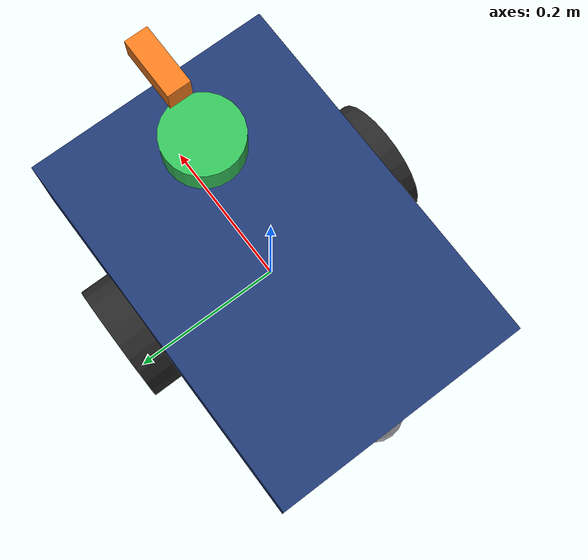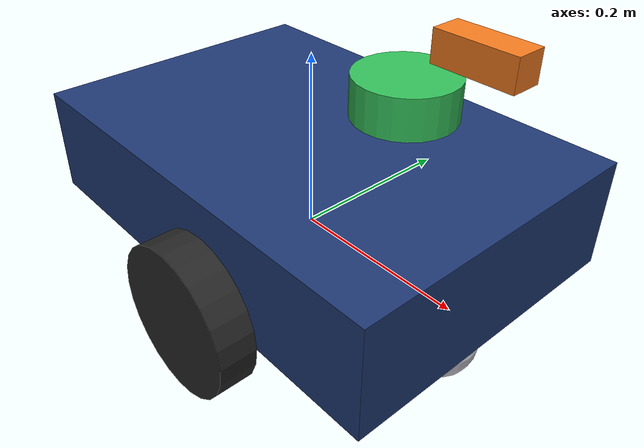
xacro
<?xml version="1.0"?>
<robot name="indoor_patrol_bot" xmlns:xacro="http://www.ros.org/wiki/xacro">
  <xacro:include filename="$(find my_robot_description)/urdf/chassis.xacro"/>
  <xacro:include filename="$(find my_robot_description)/urdf/wheels.xacro"/>
  <xacro:include filename="$(find my_robot_description)/urdf/sensors.xacro"/>
  <xacro:include filename="$(find my_robot_description)/urdf/gazebo.xacro"/>

  <xacro:property name="body_length" value="0.50"/>
  <xacro:property name="body_width" value="0.34"/>
  <xacro:property name="body_height" value="0.12"/>
  <xacro:property name="body_mass" value="8.0"/>

  <xacro:property name="wheel_radius" value="0.08"/>
  <xacro:property name="wheel_width" value="0.04"/>
  <xacro:property name="wheel_mass" value="0.6"/>

  <xacro:property name="wheel_x" value="0.04"/>
  <xacro:property name="wheel_y_offset" value="${body_width / 2.0 + wheel_width / 2.0}"/>
  <xacro:property name="wheel_z" value="${-body_height / 2.0}"/>

  <xacro:property name="rear_caster_x" value="${-body_length / 2.3}"/>
  <xacro:property name="front_caster_x" value="${body_length / 2.6}"/>
  <xacro:property name="caster_z" value="${-(body_height / 2.0 + 0.04)}"/>

  <xacro:property name="lidar_height" value="${body_height / 2.0 + 0.08}"/>
  <xacro:property name="camera_height" value="${body_height / 2.0 + 0.14}"/>
  <xacro:property name="lidar_min_angle" value="-3.14159"/>
  <xacro:property name="lidar_max_angle" value="3.14159"/>
  <xacro:property name="lidar_samples" value="720"/>
  <xacro:property name="lidar_range_min" value="0.05"/>
  <xacro:property name="lidar_range_max" value="8.0"/>
  <xacro:property name="lidar_update_rate" value="10.0"/>
  <xacro:property name="camera_width" value="640"/>
  <xacro:property name="camera_height_px" value="480"/>
  <xacro:property name="camera_hfov" value="1.047"/>
  <xacro:property name="camera_near_clip" value="0.05"/>
  <xacro:property name="camera_far_clip" value="20.0"/>
  <xacro:property name="camera_update_rate" value="15.0"/>

  <xacro:chassis
    length="${body_length}"
    width="${body_width}"
    height="${body_height}"
    mass="${body_mass}"/>

  <xacro:drive_wheel
    prefix="left"
    x="${wheel_x}"
    y="${wheel_y_offset}"
    z="${wheel_z}"
    radius="${wheel_radius}"
    width="${wheel_width}"
    mass="${wheel_mass}"/>

  <xacro:drive_wheel
    prefix="right"
    x="${wheel_x}"
    y="${-wheel_y_offset}"
    z="${wheel_z}"
    radius="${wheel_radius}"
    width="${wheel_width}"
    mass="${wheel_mass}"/>

  <xacro:caster_wheel
    prefix="rear"
    x="${rear_caster_x}"
    y="0.0"
    z="${caster_z}"
    radius="0.04"
    mass="0.2"/>

  <xacro:caster_wheel
    prefix="front"
    x="${front_caster_x}"
    y="0.0"
    z="${caster_z}"
    radius="0.04"
    mass="0.2"/>

  <xacro:sensor_mounts
    body_length="${body_length}"
    lidar_height="${lidar_height}"
    camera_height="${camera_height}"/>

  <xacro:gazebo_diff_drive
    wheel_separation="${2.0 * wheel_y_offset}"
    wheel_radius="${wheel_radius}"/>

  <xacro:gazebo_joint_state_publisher/>

  <xacro:gazebo_lidar
    topic_name="/scan"
    update_rate="${lidar_update_rate}"
    min_angle="${lidar_min_angle}"
    max_angle="${lidar_max_angle}"
    samples="${lidar_samples}"
    range_min="${lidar_range_min}"
    range_max="${lidar_range_max}"
    visualize="true"/>

  <xacro:gazebo_camera
    image_topic="/camera/image_raw"
    camera_info_topic="/camera/camera_info"
    update_rate="${camera_update_rate}"
    width="${camera_width}"
    height="${camera_height_px}"
    hfov="${camera_hfov}"
    near_clip="${camera_near_clip}"
    far_clip="${camera_far_clip}"
    visualize="true"/>
</robot>

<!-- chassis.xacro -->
<robot xmlns:xacro="http://www.ros.org/wiki/xacro">
  <xacro:macro name="chassis" params="length width height mass">
    <link name="base_footprint"/>

    <joint name="base_footprint_joint" type="fixed">
      <parent link="base_footprint"/>
      <child link="base_link"/>
      <origin xyz="0 0 ${height / 2.0}" rpy="0 0 0"/>
    </joint>

    <link name="base_link">
      <visual>
        <origin xyz="0 0 0" rpy="0 0 0"/>
        <geometry>
          <box size="${length} ${width} ${height}"/>
        </geometry>
        <material name="navy">
          <color rgba="0.12 0.22 0.45 1.0"/>
        </material>
      </visual>

      <collision>
        <origin xyz="0 0 0" rpy="0 0 0"/>
        <geometry>
          <box size="${length} ${width} ${height}"/>
        </geometry>
      </collision>

      <inertial>
        <origin xyz="0 0 0" rpy="0 0 0"/>
        <mass value="${mass}"/>
        <inertia
          ixx="${mass * (width * width + height * height) / 12.0}"
          ixy="0.0"
          ixz="0.0"
          iyy="${mass * (length * length + height * height) / 12.0}"
          iyz="0.0"
          izz="${mass * (length * length + width * width) / 12.0}"/>
      </inertial>
    </link>
  </xacro:macro>
</robot>

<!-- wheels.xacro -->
<robot xmlns:xacro="http://www.ros.org/wiki/xacro">
  <xacro:macro name="drive_wheel" params="prefix x y z radius width mass">
    <link name="${prefix}_wheel_link">
      <visual>
        <origin xyz="0 0 0" rpy="1.5708 0 0"/>
        <geometry>
          <cylinder radius="${radius}" length="${width}"/>
        </geometry>
        <material name="dark_grey">
          <color rgba="0.15 0.15 0.15 1.0"/>
        </material>
      </visual>

      <collision>
        <origin xyz="0 0 0" rpy="1.5708 0 0"/>
        <geometry>
          <cylinder radius="${radius}" length="${width}"/>
        </geometry>
      </collision>

      <inertial>
        <origin xyz="0 0 0" rpy="0 0 0"/>
        <mass value="${mass}"/>
        <inertia
          ixx="${mass * (3 * radius * radius + width * width) / 12.0}"
          ixy="0.0"
          ixz="0.0"
          iyy="${0.5 * mass * radius * radius}"
          iyz="0.0"
          izz="${mass * (3 * radius * radius + width * width) / 12.0}"/>
      </inertial>
    </link>

    <joint name="${prefix}_wheel_joint" type="continuous">
      <parent link="base_link"/>
      <child link="${prefix}_wheel_link"/>
      <origin xyz="${x} ${y} ${z}" rpy="0 0 0"/>
      <axis xyz="0 1 0"/>
    </joint>
  </xacro:macro>

  <xacro:macro name="caster_wheel" params="prefix x y z radius mass">
    <link name="${prefix}_caster_link">
      <visual>
        <origin xyz="0 0 0" rpy="0 0 0"/>
        <geometry>
          <sphere radius="${radius}"/>
        </geometry>
        <material name="silver">
          <color rgba="0.78 0.78 0.82 1.0"/>
        </material>
      </visual>

      <collision>
        <origin xyz="0 0 0" rpy="0 0 0"/>
        <geometry>
          <sphere radius="${radius}"/>
        </geometry>
      </collision>

      <inertial>
        <origin xyz="0 0 0" rpy="0 0 0"/>
        <mass value="${mass}"/>
        <inertia
          ixx="${0.4 * mass * radius * radius}"
          ixy="0.0"
          ixz="0.0"
          iyy="${0.4 * mass * radius * radius}"
          iyz="0.0"
          izz="${0.4 * mass * radius * radius}"/>
      </inertial>
    </link>

    <joint name="${prefix}_caster_joint" type="fixed">
      <parent link="base_link"/>
      <child link="${prefix}_caster_link"/>
      <origin xyz="${x} ${y} ${z}" rpy="0 0 0"/>
    </joint>
  </xacro:macro>
</robot>

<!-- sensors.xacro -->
<robot xmlns:xacro="http://www.ros.org/wiki/xacro">
  <xacro:macro name="sensor_mounts" params="body_length lidar_height camera_height">
    <link name="lidar_link">
      <visual>
        <origin xyz="0 0 0" rpy="0 0 0"/>
        <geometry>
          <cylinder radius="0.05" length="0.04"/>
        </geometry>
        <material name="green">
          <color rgba="0.2 0.75 0.35 1.0"/>
        </material>
      </visual>

      <collision>
        <origin xyz="0 0 0" rpy="0 0 0"/>
        <geometry>
          <cylinder radius="0.05" length="0.04"/>
        </geometry>
      </collision>

      <inertial>
        <origin xyz="0 0 0" rpy="0 0 0"/>
        <mass value="0.2"/>
        <inertia ixx="0.0002" ixy="0.0" ixz="0.0" iyy="0.0002" iyz="0.0" izz="0.0002"/>
      </inertial>
    </link>

    <joint name="lidar_joint" type="fixed">
      <parent link="base_link"/>
      <child link="lidar_link"/>
      <origin xyz="${body_length / 4.0} 0 ${lidar_height}" rpy="0 0 0"/>
    </joint>

    <link name="camera_link">
      <visual>
        <origin xyz="0 0 0" rpy="0 0 0"/>
        <geometry>
          <box size="0.08 0.03 0.03"/>
        </geometry>
        <material name="orange">
          <color rgba="0.95 0.48 0.12 1.0"/>
        </material>
      </visual>

      <collision>
        <origin xyz="0 0 0" rpy="0 0 0"/>
        <geometry>
          <box size="0.08 0.03 0.03"/>
        </geometry>
      </collision>

      <inertial>
        <origin xyz="0 0 0" rpy="0 0 0"/>
        <mass value="0.1"/>
        <inertia ixx="0.0001" ixy="0.0" ixz="0.0" iyy="0.0001" iyz="0.0" izz="0.0001"/>
      </inertial>
    </link>

    <joint name="camera_joint" type="fixed">
      <parent link="base_link"/>
      <child link="camera_link"/>
      <origin xyz="${body_length / 2.5} 0 ${camera_height}" rpy="0 0 0"/>
    </joint>

    <link name="camera_optical_link"/>

    <joint name="camera_optical_joint" type="fixed">
      <parent link="camera_link"/>
      <child link="camera_optical_link"/>
      <origin xyz="0 0 0" rpy="-1.5708 0 -1.5708"/>
    </joint>
  </xacro:macro>
</robot>
